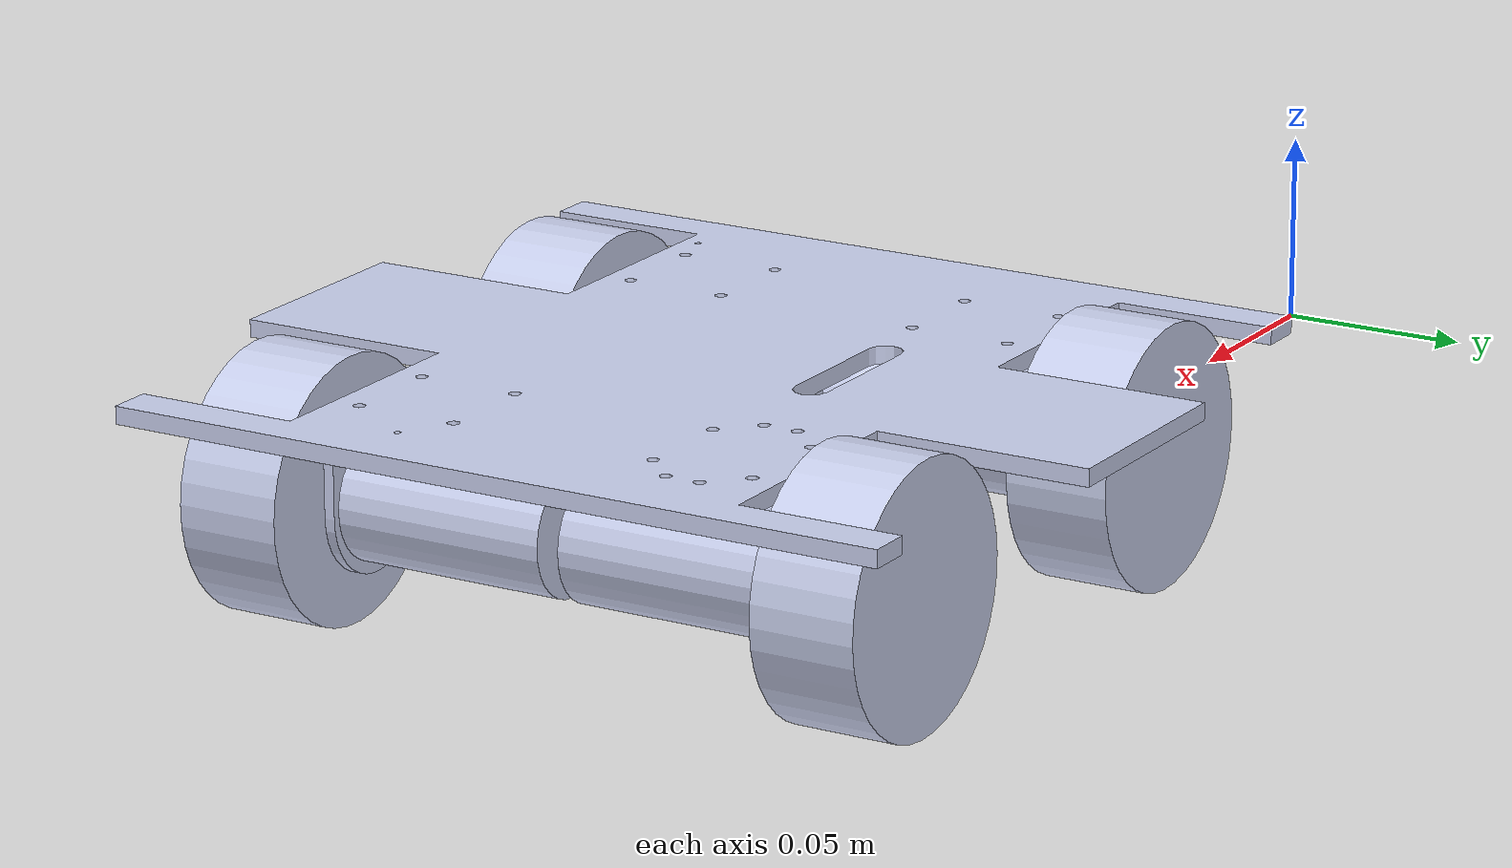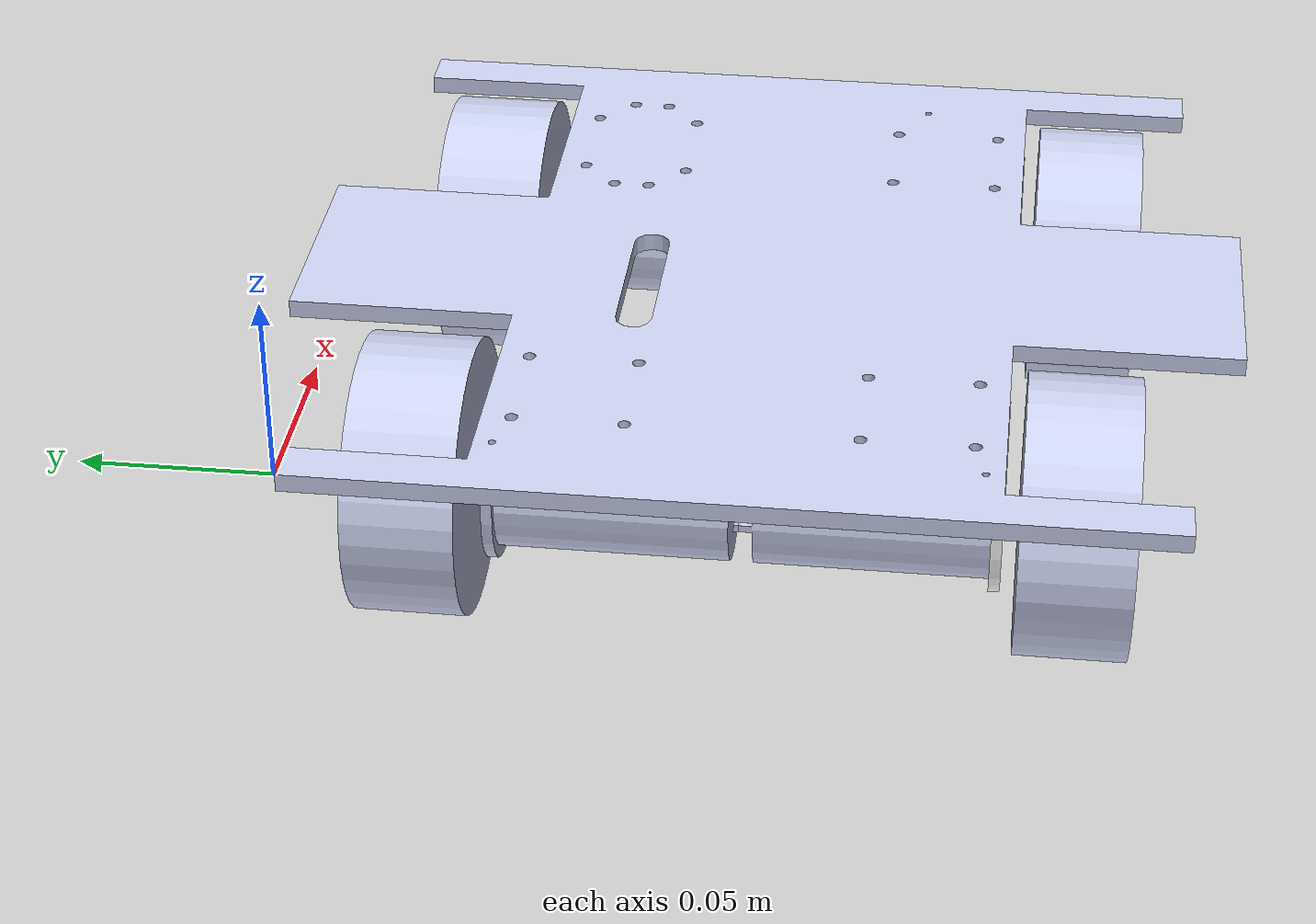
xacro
<?xml version="1.0"?>
<robot name="xacro_robot" xmlns:xacro="http://ros.org/wiki/xacro">
    <!--  Robot description  -->
    <xacro:include filename="$(find urdf_try_1)/urdf/urdf_try_1.xacro"/>

    <!-- Set transmission -->
    <xacro:include filename="$(find urdf_try_1)/urdf/transmission.xacro"/>

    <!-- Set four diff -->
    <xacro:include filename="$(find urdf_try_1)/urdf/four_diff.xacro"/>

</robot>

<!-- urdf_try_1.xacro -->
<robot
        name="urdf_try_1" xmlns:xacro="http://ros.org/wiki/xacro">

    <!--  Lidar link  -->
    <link name="laser"/>
    <joint name="laser_joint" type="fixed">
        <parent link="base_link"/>
        <child link="laser"/>
        <origin xyz="0.12 0.0 0.1" rpy="0 0 3.14"/>
    </joint>

    <link
            name="base_link">
        <inertial>
            <origin
                    xyz="0 0 0"
                    rpy="0 0 0"/>
            <mass
                    value="0.205048064278336"/>
            <inertia
                    ixx="0.000744636102725019"
                    ixy="-3.13646252611694E-07"
                    ixz="-9.04560815030523E-23"
                    iyy="0.000837402621952737"
                    iyz="2.53540352214626E-21"
                    izz="0.00158118435774326"/>
        </inertial>
        <visual>
            <origin
                    xyz="0 0 0"
                    rpy="0 0 0"/>
            <geometry>
                <mesh
                        filename="package://urdf_try_1/meshes/base_link.STL"/>
            </geometry>
            <material
                    name="">
                <color
                        rgba="0.792156862745098 0.819607843137255 0.933333333333333 1"/>
            </material>
        </visual>
        <collision>
            <origin
                    xyz="0 0 0"
                    rpy="0 0 0"/>
            <geometry>
                <mesh
                        filename="package://urdf_try_1/meshes/base_link.STL"/>
            </geometry>
        </collision>
    </link>
    <link
            name="lf_bracket_link">
        <inertial>
            <origin
                    xyz="-0.02 0.025986763677896 -0.00990787914229635"
                    rpy="0 0 0"/>
            <mass
                    value="0.00833672226393641"/>
            <inertia
                    ixx="2.98092057068024E-06"
                    ixy="-7.41612608992847E-22"
                    ixz="4.30983900644287E-22"
                    iyy="2.5814430021137E-06"
                    iyz="8.42085226413098E-07"
                    izz="2.70784033899702E-06"/>
        </inertial>
        <visual>
            <origin
                    xyz="0 0 0"
                    rpy="0 0 0"/>
            <geometry>
                <mesh
                        filename="package://urdf_try_1/meshes/lf_bracket_link.STL"/>
            </geometry>
            <material
                    name="">
                <color
                        rgba="0.792156862745098 0.819607843137255 0.933333333333333 1"/>
            </material>
        </visual>
        <collision>
            <origin
                    xyz="0 0 0"
                    rpy="0 0 0"/>
            <geometry>
                <mesh
                        filename="package://urdf_try_1/meshes/lf_bracket_link.STL"/>
            </geometry>
        </collision>
    </link>
    <joint
            name="lf_bracket_join"
            type="fixed">
        <origin
                xyz="0.2025 -0.08625 -0.005"
                rpy="0 0 0"/>
        <parent
                link="base_link"/>
        <child
                link="lf_bracket_link"/>
        <axis
                xyz="0 0 0"/>
    </joint>
    <link
            name="lf_DCmotor_link">
        <inertial>
            <origin
                    xyz="-0.0035 0.031837 -0.01"
                    rpy="0 0 0"/>
            <mass
                    value="0.064538"/>
            <inertia
                    ixx="2.7927E-05"
                    ixy="-2.3139E-21"
                    ixz="2.4025E-22"
                    iyy="1.0166E-05"
                    iyz="2.865E-21"
                    izz="2.7916E-05"/>
        </inertial>
        <visual>
            <origin
                    xyz="0 0 0"
                    rpy="0 0 0"/>
            <geometry>
                <mesh
                        filename="package://urdf_try_1/meshes/lf_DCmotor_link.STL"/>
            </geometry>
            <material
                    name="">
                <color
                        rgba="0.79216 0.81961 0.93333 1"/>
            </material>
        </visual>
        <collision>
            <origin
                    xyz="0 0 0"
                    rpy="0 0 0"/>
            <geometry>
                <mesh
                        filename="package://urdf_try_1/meshes/lf_DCmotor_link.STL"/>
            </geometry>
        </collision>
    </link>
    <joint
            name="lf_DCmotor_join"
            type="fixed">
        <origin
                xyz="-0.0165 -0.0256 -0.0146"
                rpy="0 0 0"/>
        <parent
                link="lf_bracket_link"/>
        <child
                link="lf_DCmotor_link"/>
        <axis
                xyz="0 0 0"/>
    </joint>
    <link
            name="lf_wheel_link">
        <inertial>
            <origin
                    xyz="1.11022302462516E-16 -0.0149570892186662 0"
                    rpy="0 0 0"/>
            <mass
                    value="0.131781957836458"/>
            <inertia
                    ixx="5.64750546860615E-05"
                    ixy="-5.55353366772088E-21"
                    ixz="-1.68196837805002E-21"
                    iyy="9.31833010061579E-05"
                    iyz="2.03038431756179E-21"
                    izz="5.64750546860616E-05"/>
        </inertial>
        <visual>
            <origin
                    xyz="0 0 0"
                    rpy="0 0 0"/>
            <geometry>
                <mesh
                        filename="package://urdf_try_1/meshes/lf_wheel_link.STL"/>
            </geometry>
            <material
                    name="">
                <color
                        rgba="0.792156862745098 0.819607843137255 0.933333333333333 1"/>
            </material>
        </visual>
        <collision>
            <origin
                    xyz="0 0 0"
                    rpy="0 0 0"/>
            <geometry>
                <mesh
                        filename="package://urdf_try_1/meshes/lf_wheel_link.STL"/>
            </geometry>
        </collision>
    </link>
    <joint
            name="lf_wheel_join"
            type="continuous">
        <origin
                xyz="-0.0035 0.0992 -0.01"
                rpy="0 0 0"/>
        <parent
                link="lf_DCmotor_link"/>
        <child
                link="lf_wheel_link"/>
        <axis
                xyz="0 1 0"/>
    </joint>
    <link
            name="lb_bracket_link">
        <inertial>
            <origin
                    xyz="0.02 0.025986763677896 -0.00990787914229634"
                    rpy="0 0 0"/>
            <mass
                    value="0.00833672226393639"/>
            <inertia
                    ixx="2.98092057068024E-06"
                    ixy="-4.55595242922701E-22"
                    ixz="2.49362026391E-22"
                    iyy="2.5814430021137E-06"
                    iyz="8.42085226413098E-07"
                    izz="2.70784033899702E-06"/>
        </inertial>
        <visual>
            <origin
                    xyz="0 0 0"
                    rpy="0 0 0"/>
            <geometry>
                <mesh
                        filename="package://urdf_try_1/meshes/lb_bracket_link.STL"/>
            </geometry>
            <material
                    name="">
                <color
                        rgba="0.792156862745098 0.819607843137255 0.933333333333333 1"/>
            </material>
        </visual>
        <collision>
            <origin
                    xyz="0 0 0"
                    rpy="0 0 0"/>
            <geometry>
                <mesh
                        filename="package://urdf_try_1/meshes/lb_bracket_link.STL"/>
            </geometry>
        </collision>
    </link>
    <joint
            name="lb_bracket_join"
            type="fixed">
        <origin
                xyz="0.0275 -0.08625 -0.005"
                rpy="0 0 0"/>
        <parent
                link="base_link"/>
        <child
                link="lb_bracket_link"/>
        <axis
                xyz="0 0 0"/>
    </joint>
    <link
            name="lb_DCmotor_link">
        <inertial>
            <origin
                    xyz="0.0035 0.031837 -0.01"
                    rpy="0 0 0"/>
            <mass
                    value="0.064538"/>
            <inertia
                    ixx="2.7927E-05"
                    ixy="-1.1842E-21"
                    ixz="1.8111E-22"
                    iyy="1.0166E-05"
                    iyz="2.8924E-21"
                    izz="2.7916E-05"/>
        </inertial>
        <visual>
            <origin
                    xyz="0 0 0"
                    rpy="0 0 0"/>
            <geometry>
                <mesh
                        filename="package://urdf_try_1/meshes/lb_DCmotor_link.STL"/>
            </geometry>
            <material
                    name="">
                <color
                        rgba="0.79216 0.81961 0.93333 1"/>
            </material>
        </visual>
        <collision>
            <origin
                    xyz="0 0 0"
                    rpy="0 0 0"/>
            <geometry>
                <mesh
                        filename="package://urdf_try_1/meshes/lb_DCmotor_link.STL"/>
            </geometry>
        </collision>
    </link>
    <joint
            name="lb_DCmotor_join"
            type="fixed">
        <origin
                xyz="0.0165000000000002 -0.0256 -0.0146"
                rpy="0 0 0"/>
        <parent
                link="lb_bracket_link"/>
        <child
                link="lb_DCmotor_link"/>
        <axis
                xyz="0 0 0"/>
    </joint>
    <link
            name="lb_wheel_link">
        <inertial>
            <origin
                    xyz="-2.77555756156289E-17 -0.0149570892186649 0"
                    rpy="0 0 0"/>
            <mass
                    value="0.131781957836458"/>
            <inertia
                    ixx="5.64750546860615E-05"
                    ixy="2.39861413140954E-22"
                    ixz="-8.34935430795748E-22"
                    iyy="9.31833010061579E-05"
                    iyz="2.4554189164289E-21"
                    izz="5.64750546860616E-05"/>
        </inertial>
        <visual>
            <origin
                    xyz="0 0 0"
                    rpy="0 0 0"/>
            <geometry>
                <mesh
                        filename="package://urdf_try_1/meshes/lb_wheel_link.STL"/>
            </geometry>
            <material
                    name="">
                <color
                        rgba="0.792156862745098 0.819607843137255 0.933333333333333 1"/>
            </material>
        </visual>
        <collision>
            <origin
                    xyz="0 0 0"
                    rpy="0 0 0"/>
            <geometry>
                <mesh
                        filename="package://urdf_try_1/meshes/lb_wheel_link.STL"/>
            </geometry>
        </collision>
    </link>
    <joint
            name="lb_wheel_join"
            type="continuous">
        <origin
                xyz="0.0035 0.0992 -0.01"
                rpy="0 0 0"/>
        <parent
                link="lb_DCmotor_link"/>
        <child
                link="lb_wheel_link"/>
        <axis
                xyz="0 1 0"/>
    </joint>
    <link
            name="rf_bracket_link">
        <inertial>
            <origin
                    xyz="-0.02 -0.025987 -0.0099079"
                    rpy="0 0 0"/>
            <mass
                    value="0.0083367"/>
            <inertia
                    ixx="2.9809E-06"
                    ixy="2.7262E-21"
                    ixz="3.5803E-21"
                    iyy="2.5814E-06"
                    iyz="-8.4209E-07"
                    izz="2.7078E-06"/>
        </inertial>
        <visual>
            <origin
                    xyz="0 0 0"
                    rpy="0 0 0"/>
            <geometry>
                <mesh
                        filename="package://urdf_try_1/meshes/rf_bracket_link.STL"/>
            </geometry>
            <material
                    name="">
                <color
                        rgba="0.79216 0.81961 0.93333 1"/>
            </material>
        </visual>
        <collision>
            <origin
                    xyz="0 0 0"
                    rpy="0 0 0"/>
            <geometry>
                <mesh
                        filename="package://urdf_try_1/meshes/rf_bracket_link.STL"/>
            </geometry>
        </collision>
    </link>
    <joint
            name="rf_bracket_join"
            type="fixed">
        <origin
                xyz="0.2025 -0.14375 -0.00499999999999998"
                rpy="0 0 0"/>
        <parent
                link="base_link"/>
        <child
                link="rf_bracket_link"/>
        <axis
                xyz="0 0 0"/>
    </joint>
    <link
            name="rf_DCmotor_link">
        <inertial>
            <origin
                    xyz="-0.0035 -0.031837 -0.01"
                    rpy="0 0 0"/>
            <mass
                    value="0.064538"/>
            <inertia
                    ixx="2.7927E-05"
                    ixy="-2.3576E-21"
                    ixz="-2.4525E-22"
                    iyy="1.0166E-05"
                    iyz="-7.2302E-22"
                    izz="2.7916E-05"/>
        </inertial>
        <visual>
            <origin
                    xyz="0 0 0"
                    rpy="0 0 0"/>
            <geometry>
                <mesh
                        filename="package://urdf_try_1/meshes/rf_DCmotor_link.STL"/>
            </geometry>
            <material
                    name="">
                <color
                        rgba="0.79216 0.81961 0.93333 1"/>
            </material>
        </visual>
        <collision>
            <origin
                    xyz="0 0 0"
                    rpy="0 0 0"/>
            <geometry>
                <mesh
                        filename="package://urdf_try_1/meshes/rf_DCmotor_link.STL"/>
            </geometry>
        </collision>
    </link>
    <joint
            name="rf_DCmotor_join"
            type="fixed">
        <origin
                xyz="-0.0165000000000001 0.0256 -0.0146"
                rpy="0 0 0"/>
        <parent
                link="rf_bracket_link"/>
        <child
                link="rf_DCmotor_link"/>
        <axis
                xyz="0 0 0"/>
    </joint>
    <link
            name="rf_wheel_link">
        <inertial>
            <origin
                    xyz="5.5511E-17 0.014957 0"
                    rpy="0 0 0"/>
            <mass
                    value="0.13178"/>
            <inertia
                    ixx="5.6475E-05"
                    ixy="1.4555E-21"
                    ixz="6.8695E-21"
                    iyy="9.3183E-05"
                    iyz="-1.2048E-21"
                    izz="5.6475E-05"/>
        </inertial>
        <visual>
            <origin
                    xyz="0 0 0"
                    rpy="0 0 0"/>
            <geometry>
                <mesh
                        filename="package://urdf_try_1/meshes/rf_wheel_link.STL"/>
            </geometry>
            <material
                    name="">
                <color
                        rgba="0.79216 0.81961 0.93333 1"/>
            </material>
        </visual>
        <collision>
            <origin
                    xyz="0 0 0"
                    rpy="0 0 0"/>
            <geometry>
                <mesh
                        filename="package://urdf_try_1/meshes/rf_wheel_link.STL"/>
            </geometry>
        </collision>
    </link>
    <joint
            name="rf_wheel_join"
            type="continuous">
        <origin
                xyz="-0.0035 -0.0992 -0.01"
                rpy="0 0 0"/>
        <parent
                link="rf_DCmotor_link"/>
        <child
                link="rf_wheel_link"/>
        <axis
                xyz="0 1 0"/>
    </joint>
    <link
            name="rb_bracket_join">
        <inertial>
            <origin
                    xyz="0 0 0"
                    rpy="0 0 0"/>
            <mass
                    value="0"/>
            <inertia
                    ixx="0"
                    ixy="0"
                    ixz="0"
                    iyy="0"
                    iyz="0"
                    izz="0"/>
        </inertial>
        <visual>
            <origin
                    xyz="0 0 0"
                    rpy="0 0 0"/>
            <geometry>
                <mesh
                        filename="package://urdf_try_1/meshes/rb_bracket_join.STL"/>
            </geometry>
            <material
                    name="">
                <color
                        rgba="1 1 1 1"/>
            </material>
        </visual>
        <collision>
            <origin
                    xyz="0 0 0"
                    rpy="0 0 0"/>
            <geometry>
                <mesh
                        filename="package://urdf_try_1/meshes/rb_bracket_join.STL"/>
            </geometry>
        </collision>
    </link>
    <joint
            name="rb_bracket_link"
            type="fixed">
        <origin
                xyz="0.0274999999999996 -0.14375 -0.00499999999999999"
                rpy="0 0 0"/>
        <parent
                link="base_link"/>
        <child
                link="rb_bracket_join"/>
        <axis
                xyz="0 0 0"/>
    </joint>
    <link
            name="rb_DCmotor_link">
        <inertial>
            <origin
                    xyz="0.0035 -0.031837 -0.01"
                    rpy="0 0 0"/>
            <mass
                    value="0.064538"/>
            <inertia
                    ixx="2.7927E-05"
                    ixy="-2.3574E-21"
                    ixz="-2.4528E-22"
                    iyy="1.0166E-05"
                    iyz="-7.0849E-22"
                    izz="2.7916E-05"/>
        </inertial>
        <visual>
            <origin
                    xyz="0 0 0"
                    rpy="0 0 0"/>
            <geometry>
                <mesh
                        filename="package://urdf_try_1/meshes/rb_DCmotor_link.STL"/>
            </geometry>
            <material
                    name="">
                <color
                        rgba="0.79216 0.81961 0.93333 1"/>
            </material>
        </visual>
        <collision>
            <origin
                    xyz="0 0 0"
                    rpy="0 0 0"/>
            <geometry>
                <mesh
                        filename="package://urdf_try_1/meshes/rb_DCmotor_link.STL"/>
            </geometry>
        </collision>
    </link>
    <joint
            name="rb_DCmotor_join"
            type="fixed">
        <origin
                xyz="0.0165 0.0256 -0.0146"
                rpy="0 0 0"/>
        <parent
                link="rb_bracket_join"/>
        <child
                link="rb_DCmotor_link"/>
        <axis
                xyz="0 0 0"/>
    </joint>
    <link
            name="rb_wheel_link">
        <inertial>
            <origin
                    xyz="0 0.014957 0"
                    rpy="0 0 0"/>
            <mass
                    value="0.13178"/>
            <inertia
                    ixx="5.6475E-05"
                    ixy="1.4555E-21"
                    ixz="6.8695E-21"
                    iyy="9.3183E-05"
                    iyz="-1.1518E-21"
                    izz="5.6475E-05"/>
        </inertial>
        <visual>
            <origin
                    xyz="0 0 0"
                    rpy="0 0 0"/>
            <geometry>
                <mesh
                        filename="package://urdf_try_1/meshes/rb_wheel_link.STL"/>
            </geometry>
            <material
                    name="">
                <color
                        rgba="0.79216 0.81961 0.93333 1"/>
            </material>
        </visual>
        <collision>
            <origin
                    xyz="0 0 0"
                    rpy="0 0 0"/>
            <geometry>
                <mesh
                        filename="package://urdf_try_1/meshes/rb_wheel_link.STL"/>
            </geometry>
        </collision>
    </link>
    <joint
            name="rb_wheel_join"
            type="continuous">
        <origin
                xyz="0.0035 -0.0992 -0.01"
                rpy="0 0 0"/>
        <parent
                link="rb_DCmotor_link"/>
        <child
                link="rb_wheel_link"/>
        <axis
                xyz="0 1 0"/>
    </joint>
</robot>

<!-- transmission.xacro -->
<robot name="xacro_transmission" xmlns:xacro="http://ros.org/wiki/xacro">

    <!-- Wheel  Transmission -->
    <set_transmission wheel_joint="lf_wheel_join" motor_link="lf_DCmotor_link"/>
    <set_transmission wheel_joint="lb_wheel_join" motor_link="lb_DCmotor_link"/>
    <set_transmission wheel_joint="rf_wheel_join" motor_link="rf_DCmotor_link"/>
    <set_transmission wheel_joint="rb_wheel_join" motor_link="rb_DCmotor_link"/>

</robot>
